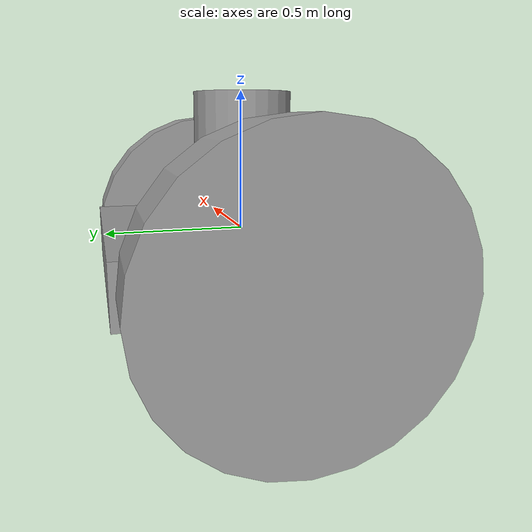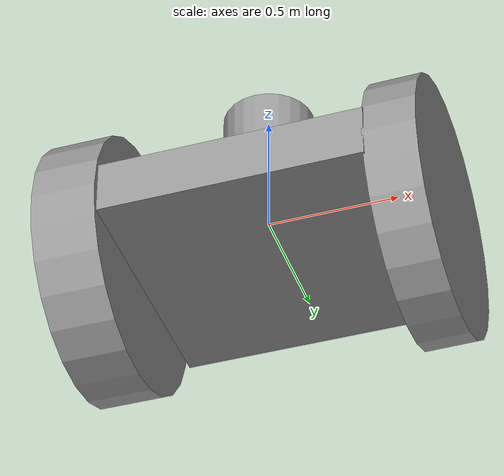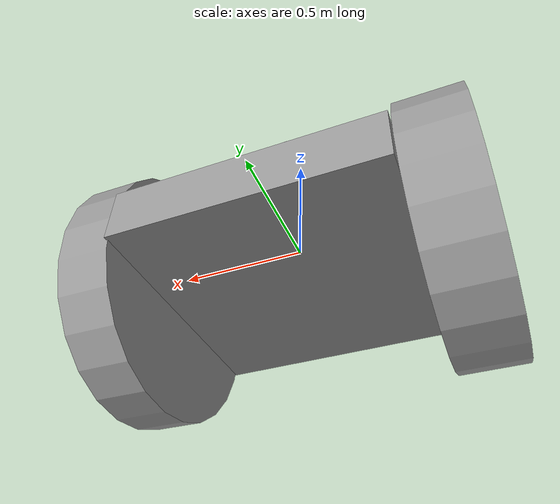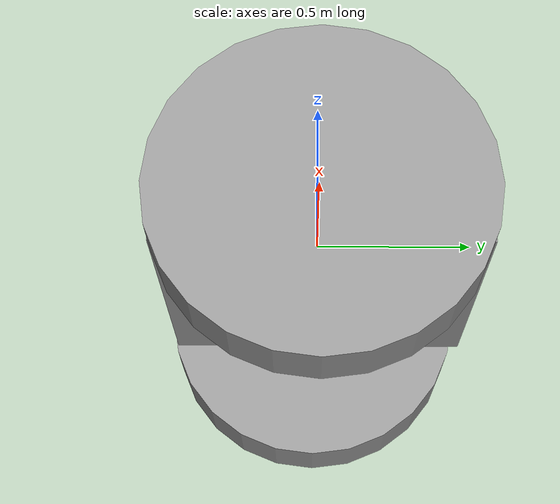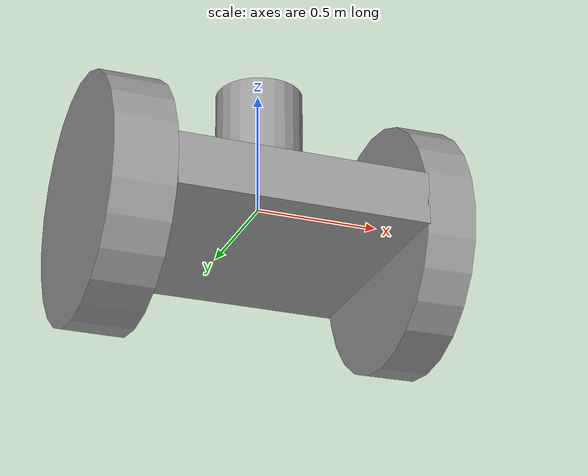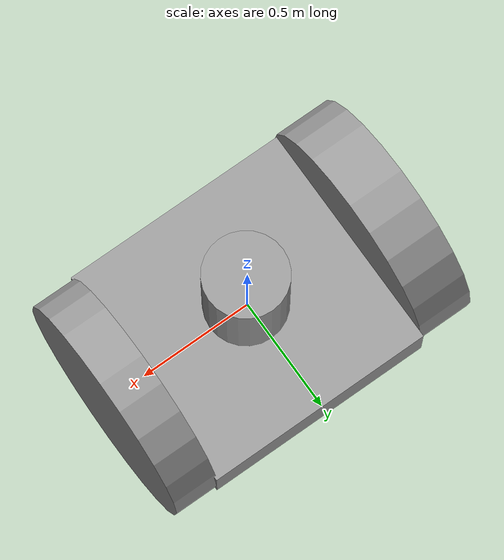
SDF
<?xml version='1.0'?>
<sdf version='1.6'>
  <model name='robot'>
    <link name='link_0'>
      <inertial>
        <mass>0.210647</mass>
        <inertia>
          <ixx>0.0183329</ixx>
          <ixy>0</ixy>
          <ixz>0</ixz>
          <iyy>0.0183329</iyy>
          <iyz>0</iyz>
          <izz>0.0351079</izz>
        </inertia>
        <pose frame=''>0 0 0 0 -0 0</pose>
      </inertial>
      <pose frame=''>0.010031 0.00904 -0.082704 0 -0 0</pose>
      <visual name='visual'>
        <pose frame=''>0 0 0 0 -0 0</pose>
        <geometry>
          <box>
            <size>1 1 0.210655</size>
          </box>
        </geometry>
        <material>
          <lighting>1</lighting>
          <script>
            <uri>file://media/materials/scripts/gazebo.material</uri>
            <name>Gazebo/Grey</name>
          </script>
          <emissive>0 0 0 1</emissive>
        </material>
        <transparency>0</transparency>
        <cast_shadows>1</cast_shadows>
      </visual>
      <collision name='collision'>
        <laser_retro>0</laser_retro>
        <max_contacts>10</max_contacts>
        <pose frame=''>0 0 0 0 -0 0</pose>
        <geometry>
          <box>
            <size>1 1 0.210655</size>
          </box>
        </geometry>
        <surface>
          <friction>
            <ode>
              <mu>1</mu>
              <mu2>1</mu2>
              <fdir1>0 0 0</fdir1>
              <slip1>0</slip1>
              <slip2>0</slip2>
            </ode>
            <torsional>
              <coefficient>1</coefficient>
              <patch_radius>0</patch_radius>
              <surface_radius>0</surface_radius>
              <use_patch_radius>1</use_patch_radius>
              <ode>
                <slip>0</slip>
              </ode>
            </torsional>
          </friction>
          <bounce>
            <restitution_coefficient>0</restitution_coefficient>
            <threshold>1e+06</threshold>
          </bounce>
          <contact>
            <collide_without_contact>0</collide_without_contact>
            <collide_without_contact_bitmask>1</collide_without_contact_bitmask>
            <collide_bitmask>1</collide_bitmask>
            <ode>
              <soft_cfm>0</soft_cfm>
              <soft_erp>0.2</soft_erp>
              <kp>1e+13</kp>
              <kd>1</kd>
              <max_vel>0.01</max_vel>
              <min_depth>0</min_depth>
            </ode>
            <bullet>
              <split_impulse>1</split_impulse>
              <split_impulse_penetration_threshold>-0.01</split_impulse_penetration_threshold>
              <soft_cfm>0</soft_cfm>
              <soft_erp>0.2</soft_erp>
              <kp>1e+13</kp>
              <kd>1</kd>
            </bullet>
          </contact>
        </surface>
      </collision>
    </link>
    <link name='link_1'>
      <inertial>
        <mass>0.197908</mass>
        <inertia>
          <ixx>0.0130152</ixx>
          <ixy>0</ixy>
          <ixz>0</ixz>
          <iyy>0.0130152</iyy>
          <iyz>0</iyz>
          <izz>0.0247385</izz>
        </inertia>
        <pose frame=''>0 0 0 0 -0 0</pose>
      </inertial>
      <pose frame=''>0.602634 0.006798 -0.092623 0 1.5581 0</pose>
      <visual name='visual'>
        <pose frame=''>0 0 0 0 -0 0</pose>
        <geometry>
          <cylinder>
            <radius>0.5</radius>
            <length>0.197905</length>
          </cylinder>
        </geometry>
        <material>
          <lighting>1</lighting>
          <script>
            <uri>file://media/materials/scripts/gazebo.material</uri>
            <name>Gazebo/Grey</name>
          </script>
          <emissive>0 0 0 1</emissive>
        </material>
        <transparency>0</transparency>
        <cast_shadows>1</cast_shadows>
      </visual>
      <collision name='collision'>
        <laser_retro>0</laser_retro>
        <max_contacts>10</max_contacts>
        <pose frame=''>0 0 0 0 -0 0</pose>
        <geometry>
          <cylinder>
            <radius>0.5</radius>
            <length>0.197905</length>
          </cylinder>
        </geometry>
        <surface>
          <friction>
            <ode>
              <mu>1</mu>
              <mu2>1</mu2>
              <fdir1>0 0 0</fdir1>
              <slip1>0</slip1>
              <slip2>0</slip2>
            </ode>
            <torsional>
              <coefficient>1</coefficient>
              <patch_radius>0</patch_radius>
              <surface_radius>0</surface_radius>
              <use_patch_radius>1</use_patch_radius>
              <ode>
                <slip>0</slip>
              </ode>
            </torsional>
          </friction>
          <bounce>
            <restitution_coefficient>0</restitution_coefficient>
            <threshold>1e+06</threshold>
          </bounce>
          <contact>
            <collide_without_contact>0</collide_without_contact>
            <collide_without_contact_bitmask>1</collide_without_contact_bitmask>
            <collide_bitmask>1</collide_bitmask>
            <ode>
              <soft_cfm>0</soft_cfm>
              <soft_erp>0.2</soft_erp>
              <kp>1e+13</kp>
              <kd>1</kd>
              <max_vel>0.01</max_vel>
              <min_depth>0</min_depth>
            </ode>
            <bullet>
              <split_impulse>1</split_impulse>
              <split_impulse_penetration_threshold>-0.01</split_impulse_penetration_threshold>
              <soft_cfm>0</soft_cfm>
              <soft_erp>0.2</soft_erp>
              <kp>1e+13</kp>
              <kd>1</kd>
            </bullet>
          </contact>
        </surface>
      </collision>
    </link>
    <link name='link_2'>
      <inertial>
        <mass>0.245765</mass>
        <inertia>
          <ixx>0.0165974</ixx>
          <ixy>0</ixy>
          <ixz>0</ixz>
          <iyy>0.0165974</iyy>
          <iyz>0</iyz>
          <izz>0.0307207</izz>
        </inertia>
        <pose frame=''>0 0 0 0 -0 0</pose>
      </inertial>
      <pose frame=''>-0.616285 -0.010112 -0.078315 0 -1.56868 0</pose>
      <visual name='visual'>
        <pose frame=''>0 0 0 0 -0 0</pose>
        <geometry>
          <cylinder>
            <radius>0.5</radius>
            <length>0.24577</length>
          </cylinder>
        </geometry>
        <material>
          <lighting>1</lighting>
          <script>
            <uri>file://media/materials/scripts/gazebo.material</uri>
            <name>Gazebo/Grey</name>
          </script>
          <emissive>0 0 0 1</emissive>
        </material>
        <transparency>0</transparency>
        <cast_shadows>1</cast_shadows>
      </visual>
      <collision name='collision'>
        <laser_retro>0</laser_retro>
        <max_contacts>10</max_contacts>
        <pose frame=''>0 0 0 0 -0 0</pose>
        <geometry>
          <cylinder>
            <radius>0.5</radius>
            <length>0.24577</length>
          </cylinder>
        </geometry>
        <surface>
          <friction>
            <ode>
              <mu>1</mu>
              <mu2>1</mu2>
              <fdir1>0 0 0</fdir1>
              <slip1>0</slip1>
              <slip2>0</slip2>
            </ode>
            <torsional>
              <coefficient>1</coefficient>
              <patch_radius>0</patch_radius>
              <surface_radius>0</surface_radius>
              <use_patch_radius>1</use_patch_radius>
              <ode>
                <slip>0</slip>
              </ode>
            </torsional>
          </friction>
          <bounce>
            <restitution_coefficient>0</restitution_coefficient>
            <threshold>1e+06</threshold>
          </bounce>
          <contact>
            <collide_without_contact>0</collide_without_contact>
            <collide_without_contact_bitmask>1</collide_without_contact_bitmask>
            <collide_bitmask>1</collide_bitmask>
            <ode>
              <soft_cfm>0</soft_cfm>
              <soft_erp>0.2</soft_erp>
              <kp>1e+13</kp>
              <kd>1</kd>
              <max_vel>0.01</max_vel>
              <min_depth>0</min_depth>
            </ode>
            <bullet>
              <split_impulse>1</split_impulse>
              <split_impulse_penetration_threshold>-0.01</split_impulse_penetration_threshold>
              <soft_cfm>0</soft_cfm>
              <soft_erp>0.2</soft_erp>
              <kp>1e+13</kp>
              <kd>1</kd>
            </bullet>
          </contact>
        </surface>
      </collision>
    </link>
    <link name='link_4'>
      <inertial>
        <mass>0.0591224</mass>
        <inertia>
          <ixx>0.00160594</ixx>
          <ixy>0</ixy>
          <ixz>0</ixz>
          <iyy>0.00160594</iyy>
          <iyz>0</iyz>
          <izz>0.000902384</izz>
        </inertia>
        <pose frame=''>0 0 0 0 -0 0</pose>
      </inertial>
      <pose frame=''>0.00362 -0.005726 0.253641 0 -0 0</pose>
      <visual name='visual'>
        <pose frame=''>0 0 0 0 -0 0</pose>
        <geometry>
          <cylinder>
            <radius>0.174717</radius>
            <length>0.484125</length>
          </cylinder>
        </geometry>
        <material>
          <lighting>1</lighting>
          <script>
            <uri>file://media/materials/scripts/gazebo.material</uri>
            <name>Gazebo/Grey</name>
          </script>
          <emissive>0 0 0 1</emissive>
        </material>
        <transparency>0</transparency>
        <cast_shadows>1</cast_shadows>
      </visual>
      <collision name='collision'>
        <laser_retro>0</laser_retro>
        <max_contacts>10</max_contacts>
        <pose frame=''>0 0 0 0 -0 0</pose>
        <geometry>
          <cylinder>
            <radius>0.174717</radius>
            <length>0.484125</length>
          </cylinder>
        </geometry>
        <surface>
          <friction>
            <ode>
              <mu>1</mu>
              <mu2>1</mu2>
              <fdir1>0 0 0</fdir1>
              <slip1>0</slip1>
              <slip2>0</slip2>
            </ode>
            <torsional>
              <coefficient>1</coefficient>
              <patch_radius>0</patch_radius>
              <surface_radius>0</surface_radius>
              <use_patch_radius>1</use_patch_radius>
              <ode>
                <slip>0</slip>
              </ode>
            </torsional>
          </friction>
          <bounce>
            <restitution_coefficient>0</restitution_coefficient>
            <threshold>1e+06</threshold>
          </bounce>
          <contact>
            <collide_without_contact>0</collide_without_contact>
            <collide_without_contact_bitmask>1</collide_without_contact_bitmask>
            <collide_bitmask>1</collide_bitmask>
            <ode>
              <soft_cfm>0</soft_cfm>
              <soft_erp>0.2</soft_erp>
              <kp>1e+13</kp>
              <kd>1</kd>
              <max_vel>0.01</max_vel>
              <min_depth>0</min_depth>
            </ode>
            <bullet>
              <split_impulse>1</split_impulse>
              <split_impulse_penetration_threshold>-0.01</split_impulse_penetration_threshold>
              <soft_cfm>0</soft_cfm>
              <soft_erp>0.2</soft_erp>
              <kp>1e+13</kp>
              <kd>1</kd>
            </bullet>
          </contact>
        </surface>
      </collision>
    </link>
    <joint name='link_0_JOINT_0' type='fixed'>
      <parent>link_0</parent>
      <child>link_4</child>
      <pose frame=''>0 0 0 0 -0 0</pose>
      <physics>
        <ode>
          <limit>
            <cfm>0</cfm>
            <erp>0.2</erp>
          </limit>
          <suspension>
            <cfm>0</cfm>
            <erp>0.2</erp>
          </suspension>
        </ode>
      </physics>
    </joint>
    <joint name='link_0_JOINT_1' type='revolute'>
      <parent>link_0</parent>
      <child>link_1</child>
      <pose frame=''>0 0 0 0 -0 0</pose>
      <axis>
        <xyz>0 0 1</xyz>
        <use_parent_model_frame>0</use_parent_model_frame>
        <limit>
          <lower>-1.79769e+308</lower>
          <upper>1.79769e+308</upper>
          <effort>-1</effort>
          <velocity>-1</velocity>
        </limit>
        <dynamics>
          <spring_reference>0</spring_reference>
          <spring_stiffness>0</spring_stiffness>
          <damping>0</damping>
        </dynamics>
      </axis>
      <physics>
        <ode>
          <limit>
            <cfm>0</cfm>
            <erp>0.2</erp>
          </limit>
          <suspension>
            <cfm>0</cfm>
            <erp>0.2</erp>
          </suspension>
        </ode>
      </physics>
    </joint>
    <joint name='link_0_JOINT_2' type='revolute'>
      <parent>link_0</parent>
      <child>link_2</child>
      <pose frame=''>0 0 0 0 -0 0</pose>
      <axis>
        <xyz>0 0 1</xyz>
        <use_parent_model_frame>0</use_parent_model_frame>
        <limit>
          <lower>-1.79769e+308</lower>
          <upper>1.79769e+308</upper>
          <effort>-1</effort>
          <velocity>-1</velocity>
        </limit>
        <dynamics>
          <spring_reference>0</spring_reference>
          <spring_stiffness>0</spring_stiffness>
          <damping>0</damping>
        </dynamics>
      </axis>
      <physics>
        <ode>
          <limit>
            <cfm>0</cfm>
            <erp>0.2</erp>
          </limit>
          <suspension>
            <cfm>0</cfm>
            <erp>0.2</erp>
          </suspension>
        </ode>
      </physics>
    </joint>
    <static>0</static>
    <allow_auto_disable>1</allow_auto_disable>
  </model>
</sdf>
